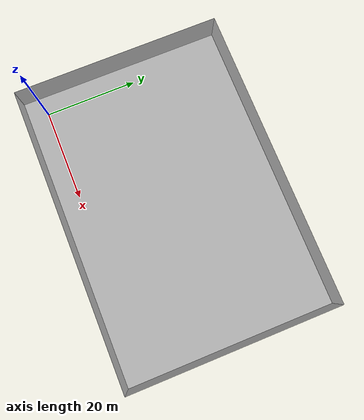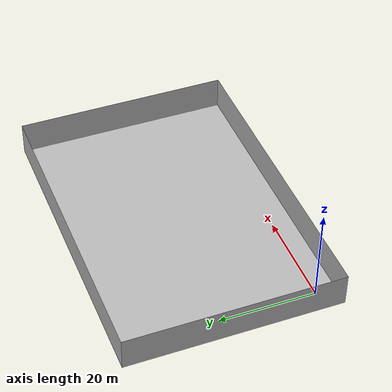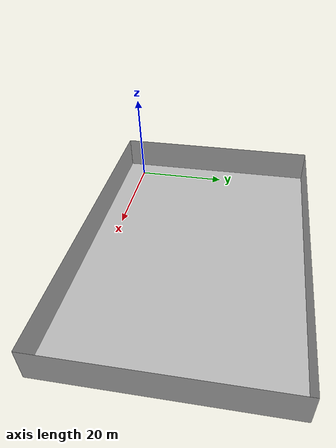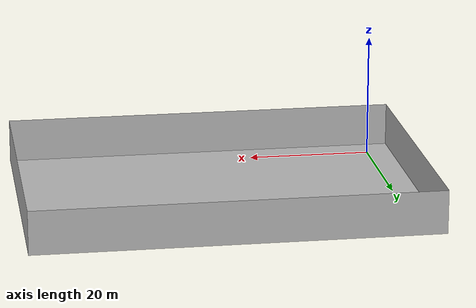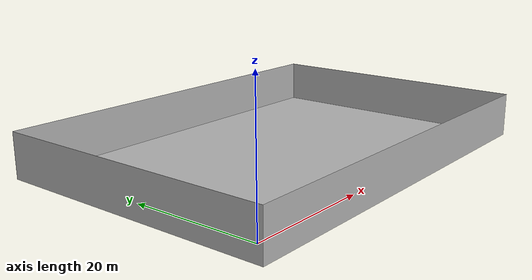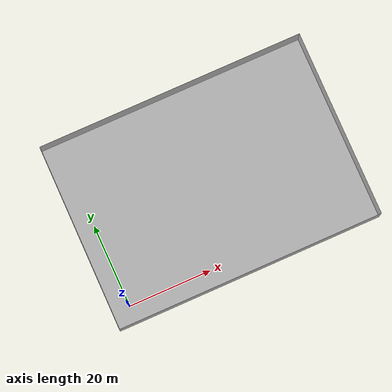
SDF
<?xml version='1.0' encoding='utf-8'?>
<sdf version="1.4">
<model name="template_model">
<link name="track">
<collision name="collision">
<pose>0 0 0 0 0 0</pose>
<geometry>
<mesh>
<uri>model://meshes/Trapezoid/Trapezoid_collision.dae</uri>
</mesh>
</geometry>
</collision>
<visual name="visual">
<pose>0 0 0 0 0 0</pose>
<geometry>
<mesh>
<uri>model://meshes/Trapezoid/Trapezoid_scale.dae</uri>
</mesh>
</geometry>
</visual>
</link>
<static>1</static>
</model>
</sdf>
